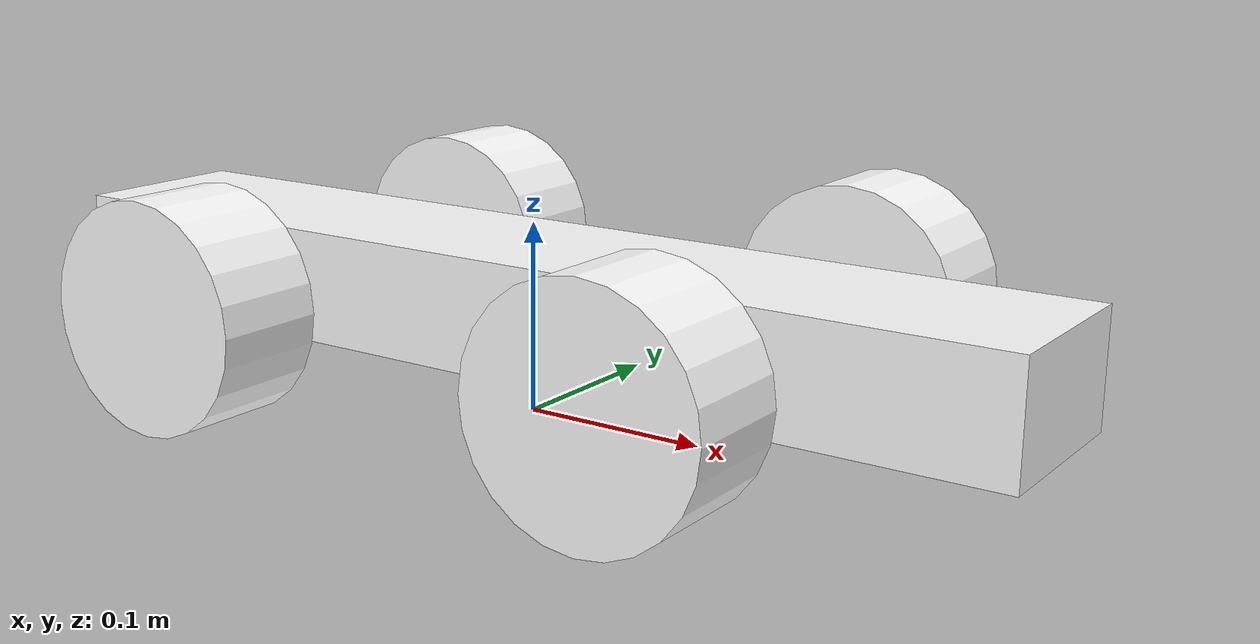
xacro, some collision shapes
<?xml version="1.0" encoding="utf-8"?>

<robot name="racebot" xmlns:xacro="http://www.ros.org/wiki/xacro">
    <xacro:property name="M_PI" value="3.1415926"/>
    <!-- Tire rotational resistance: rotation_fiction -->
    <xacro:property name="rotation_fiction" value="1"/>
    <!-- Tire grip: mu-->
    <xacro:property name="mu" value="9999999999.0"/>
    <xacro:property name="r_wheel" value="0.06"/>
    <xacro:property name="l_wheel" value="0.06"/>

    <xacro:include filename="$(find carsim)/urdf/macros.xacro" />

    <link name="base_footprint" />

<!-- STL model -->
    <link name="base_link">
        <visual>
            <geometry>
                <mesh filename="package://carsim/meshes/tank.STL" scale="0.0025 0.0025 0.0025"  />
            </geometry>
            <origin xyz="0 0 0" rpy="0 0 -1.5708" />
            <material name="yellow">
                <color rgba="1.0 1.0 1.0 0.9" />
            </material>
        </visual>
        <collision>
            <geometry>
                <box size="0.56 0.1 0.06" />
            </geometry>
            <origin xyz="0.0 0.0 0.0" rpy="0.0 0.0 0.0" />
        </collision>
    </link>

    <joint name="base_link2base_footprint" type="fixed">
        <parent link="base_footprint" />
        <child link="base_link"/>
        <origin xyz="0 0 ${r_wheel}" rpy="0 0 0" />
    </joint>

    <!-- base_inertia -->
    <link name="base_inertia">
        <inertial>
            <origin xyz="0 0 0" />
            <mass value="4" />
            <inertia ixx="0.0264" ixy="0" ixz="0" iyy="0.0294" iyz="0" izz="0.00364" />
        </inertial>
    </link>

    <!-- chassis_inertia_joint -->
    <joint name="chassis_inertia_joint" type="fixed">
        <origin xyz="0 0 0" rpy="0 0 0" />
        <parent link="base_link" />
        <child link="base_inertia" />
    </joint>

<!-- left_steering_hinge -->
    <link name="left_steering_hinge">
        <visual>
            <geometry>
                <cylinder radius="0.01" length="0.005" />
            </geometry>
            <origin xyz="0 0 0" rpy="1.57 0 0" />
            <material name="yellow">
                <color rgba="1.0 1.0 1.0 0.9" />
            </material>
        </visual>
        <collision>
            <geometry>
                <cylinder radius="0.01" length="0.005" />
            </geometry>
            <origin xyz="0.0 0.0 0.0" rpy="1.57 0.0 0.0" />
        </collision>
        <inertial>
            <origin xyz="0 0 0" />
            <mass value="0.5" />
            <inertia ixx="1.35E-05" ixy="0" ixz="0" iyy="1.35E-05" iyz="0" izz="2.5E-05" />
        </inertial>
    </link>
    <!-- left_steering_hinge_joint -->
    <joint name="left_steering_hinge_joint" type="revolute">
        <parent link="base_link" />
        <child link="left_steering_hinge" />
        <origin xyz="0.13 0.12 0" />
        <axis xyz="0 0 1" />
        <limit lower="-0.6" upper="0.6" effort="5.0" velocity="1000.0"/>
    </joint>
    <xacro:steering_hinge_transmission name="left_steering_hinge" />

<!-- left_front_wheel -->
    <link name="left_front_wheel">
        <visual>
            <geometry>
                <cylinder radius="${r_wheel}" length="${l_wheel}" />
            </geometry>
            <origin xyz="0 0 0" rpy="1.57 0 0" />
            <material name="yellow">
                <color rgba="1.0 1.0 1.0 0.9" />
            </material>
        </visual>
        <collision>
            <geometry>
                <cylinder radius="${r_wheel}" length="${l_wheel}" />
            </geometry>
            <origin xyz="0.0 0.0 0.0" rpy="1.57 0.0 0.0" />
        </collision>
        <inertial>
            <origin xyz="0 0 0" />
            <mass value="2.0" />
            <inertia ixx="6.64E-04" ixy="0" ixz="0" iyy="6.64E-04" iyz="0" izz="1.02E-03" />
        </inertial>
        <xacro:wheel_friction name="${mu}" />
    </link>

    <joint name="left_front_wheel_joint" type="continuous">
        <parent link="left_steering_hinge" />
        <child link="left_front_wheel" />
        <origin xyz="0 0 0" />
        <axis xyz="0 1 0" />
        <limit effort="10" velocity="1000" />
        <dynamics damping="0.0" friction="${rotation_fiction}"/>
    </joint>
     <xacro:wheel_transmission name="left_front_wheel" />

<!-- right_steering_hinge -->
    <link name="right_steering_hinge">
        <visual>
            <geometry>
                 <cylinder radius="0.01" length="0.005" />
            </geometry>
            <origin xyz="0 0 0" rpy="1.57 0 0" />
            <material name="yellow">
                <color rgba="1.0 1.0 1.0 0.9" />
            </material>
        </visual>
        <collision>
            <geometry>
                <cylinder radius="0.01" length="0.005" />
            </geometry>
            <origin xyz="0.0 0.0 0.0" rpy="1.57 0.0 0.0" />
        </collision>
        <inertial>
            <origin xyz="0 0 0" />
            <mass value="0.5" />
            <inertia ixx="1.35E-05" ixy="0" ixz="0" iyy="1.35E-05" iyz="0" izz="2.5E-05" />
        </inertial>
    </link>

    <joint name="right_steering_hinge_joint" type="revolute">
        <parent link="base_link" />
        <child link="right_steering_hinge" />
        <origin xyz="0.13 -0.12 0" />
        <axis xyz="0 0 1" />
        <limit lower="-0.6" upper="0.6" effort="5.0" velocity="1000.0"/>
    </joint>
    <xacro:steering_hinge_transmission name="right_steering_hinge" />

<!-- right_front_wheel -->
    <link name="right_front_wheel">
        <visual>
            <geometry>
                <cylinder radius="${r_wheel}" length="${l_wheel}" />
            </geometry>
            <origin xyz="0 0 0" rpy="1.57 0 0" />
            <material name="yellow">
                <color rgba="1.0 1.0 1.0 0.9" />
            </material>
        </visual>
        <collision>
            <geometry>
                <cylinder radius="${r_wheel}" length="${l_wheel}" />
            </geometry>
            <origin xyz="0.0 0.0 0.0" rpy="1.57 0.0 0.0" />
        </collision>
        <inertial>
            <origin xyz="0 0 0" />
            <mass value="2.0" />
            <inertia ixx="6.64E-04" ixy="0" ixz="0" iyy="6.64E-04" iyz="0" izz="1.02E-03" />
        </inertial>
        <xacro:wheel_friction name="${mu}" />
    </link>

    <joint name="right_front_wheel_joint" type="continuous">
        <parent link="right_steering_hinge" />
        <child link="right_front_wheel" />
        <origin xyz="0 0 0" />
        <axis xyz="0 1 0" />
        <limit effort="10" velocity="1000" />
        <dynamics damping="0.0" friction="${rotation_fiction}"/>
    </joint>
    <xacro:wheel_transmission name="right_front_wheel" />

<!-- left_rear_wheel -->
    <link name="left_rear_wheel">
        <visual>
            <geometry>
                <cylinder radius="${r_wheel}" length="${l_wheel}" />
            </geometry>
            <origin xyz="0 0 0" rpy="1.57 0 0" />
            <material name="yellow">
                <color rgba="1.0 1.0 1.0 0.9" />
            </material>
        </visual>
        <collision>
            <geometry>
                <cylinder radius="${r_wheel}" length="${l_wheel}" />
            </geometry>
            <origin xyz="0.0 0.0 0.0" rpy="1.57 0.0 0.0" />
        </collision>
        <inertial>
            <origin xyz="0 0 0" />
            <mass value="2.0" />
            <inertia ixx="6.64E-04" ixy="0" ixz="0" iyy="6.64E-04" iyz="0" izz="1.02E-03" />
        </inertial>
        <xacro:wheel_friction name="${mu}" />

    </link>
    <joint name="left_rear_wheel_joint" type="continuous">
        <parent link="base_link" />
        <child link="left_rear_wheel" />
        <origin xyz="-0.13 0.12 0" />
        <axis xyz="0 1 0" />
        <limit effort="10" velocity="1000" />
        <dynamics damping="0.0" friction="${rotation_fiction}"/>
    </joint>
    <xacro:wheel_transmission name="left_rear_wheel" />

<!-- right_rear_wheel -->
    <link name="right_rear_wheel">
        <visual>
            <geometry>
                <cylinder radius="${r_wheel}" length="${l_wheel}" />
            </geometry>
            <origin xyz="0 0 0" rpy="1.57 0 0" />
            <material name="yellow">
                <color rgba="1.0 1.0 1.0 0.9" />
            </material>
        </visual>
        <collision>
            <geometry>
                <cylinder radius="${r_wheel}" length="${l_wheel}" />
            </geometry>
            <origin xyz="0.0 0.0 0.0" rpy="1.57 0.0 0.0" />
        </collision>
        <inertial>
            <origin xyz="0 0 0" />
            <mass value="2.0" />
            <inertia ixx="6.64E-04" ixy="0" ixz="0" iyy="6.64E-04" iyz="0" izz="1.02E-03" />
        </inertial>
        <xacro:wheel_friction name="${mu}" />
    </link>
    <joint name="right_rear_wheel_joint" type="continuous">
        <parent link="base_link" />
        <child link="right_rear_wheel" />
        <origin xyz="-0.13 -0.12 0" />
        <axis xyz="0 1 0" />
        <limit effort="10" velocity="1000" />
        <dynamics damping="0.0" friction="${rotation_fiction}"/>
    </joint>
    <xacro:wheel_transmission name="right_rear_wheel" />

    <xacro:include filename="$(find carsim)/urdf/racecar.gazebo" />
</robot>

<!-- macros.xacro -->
<robot name="racebot" xmlns:xacro="http://www.ros.org/wiki/xacro">

<!-- transmission macros -->
<xacro:macro name="wheel_transmission" params="name">
  <transmission name="${name}_transmission" type="SimpleTransmission">
    <type>transmission_interface/SimpleTransmission</type>
    <joint name="${name}_joint">
      <hardwareInterface>hardware_interface/VelocityJointInterface</hardwareInterface>
    </joint>
    <actuator name="${name}_motor">
      <hardwareInterface>hardware_interface/VelocityJointInterface</hardwareInterface>
      <mechanicalReduction>1</mechanicalReduction>
    </actuator>
  </transmission>
</xacro:macro>

<xacro:macro name="steering_hinge_transmission" params="name">
  <transmission name="${name}_transmission" type="SimpleTransmission">
    <type>transmission_interface/SimpleTransmission</type>
    <joint name="${name}_joint">
      <hardwareInterface>hardware_interface/EffortJointInterface</hardwareInterface>
    </joint>
    <actuator name="${name}_motor">
      <hardwareInterface>hardware_interface/EffortJointInterface</hardwareInterface>
      <mechanicalReduction>1</mechanicalReduction>
      <motorTorqueConstant>1000000</motorTorqueConstant>
    </actuator>
  </transmission>
</xacro:macro>

<xacro:macro name="wheel_friction" params="name">
  <surface>
      <friction>
        <ode>
            <mu>1.0</mu>
            <mu2>1.0</mu2>
        </ode>
      </friction>
  </surface>
</xacro:macro>

</robot>
